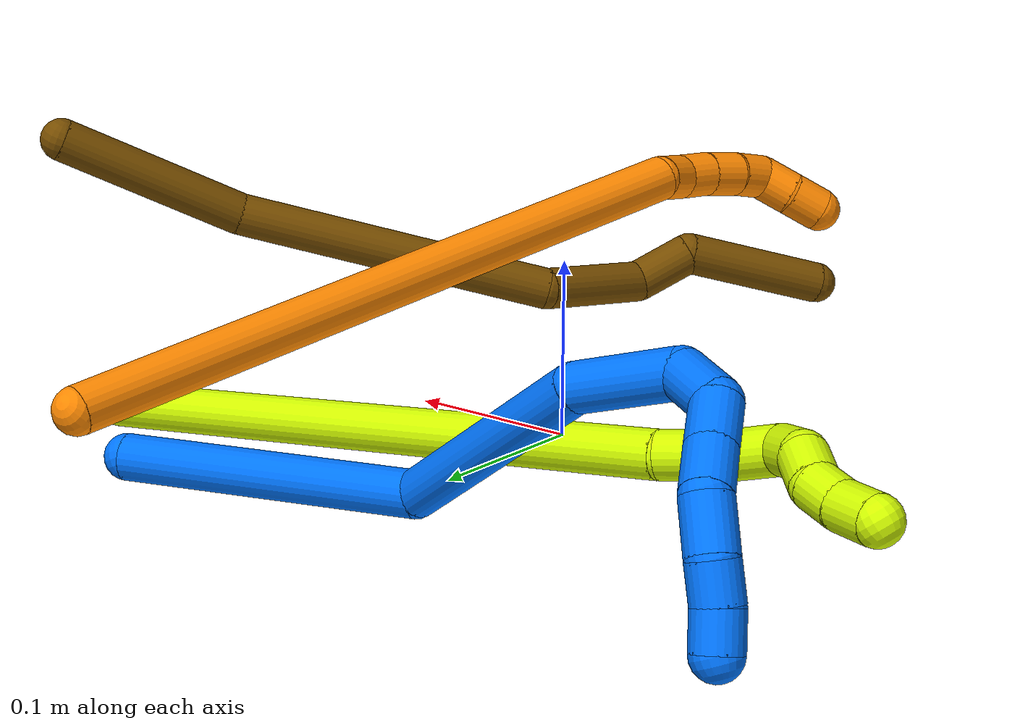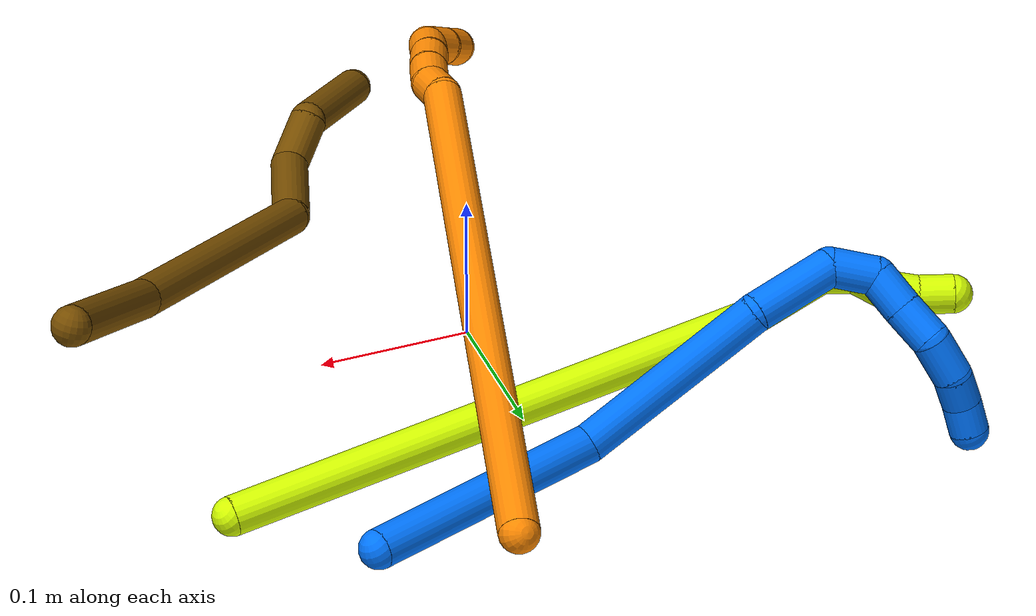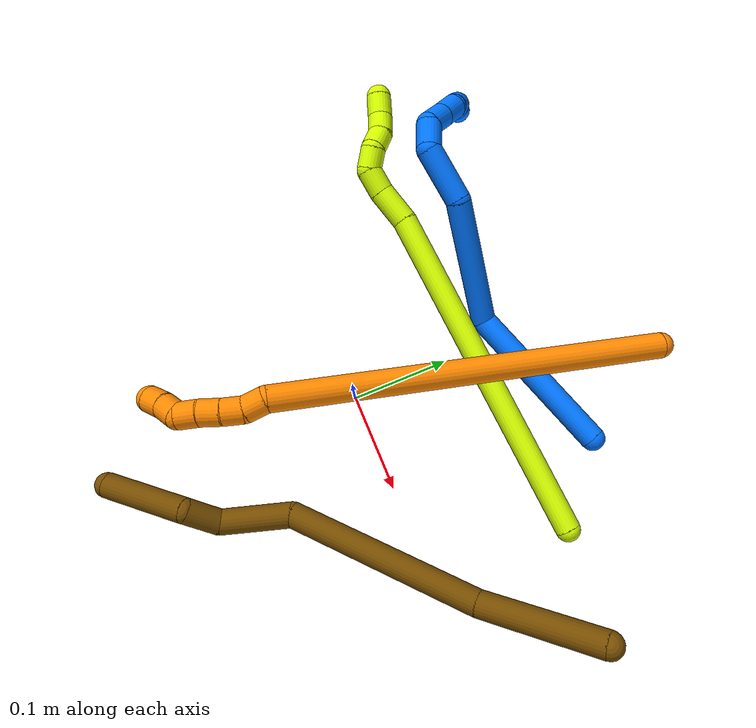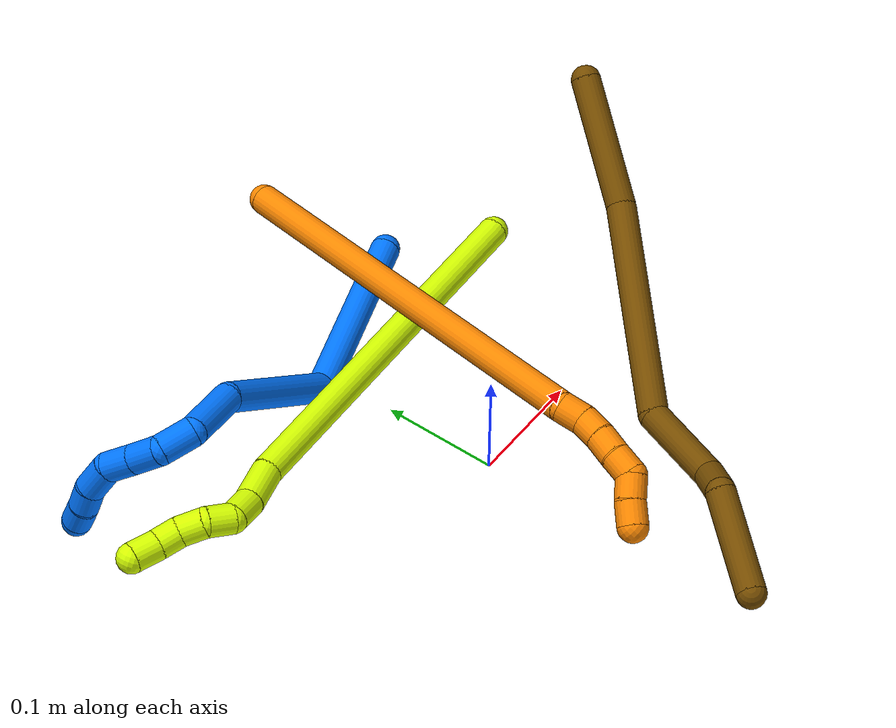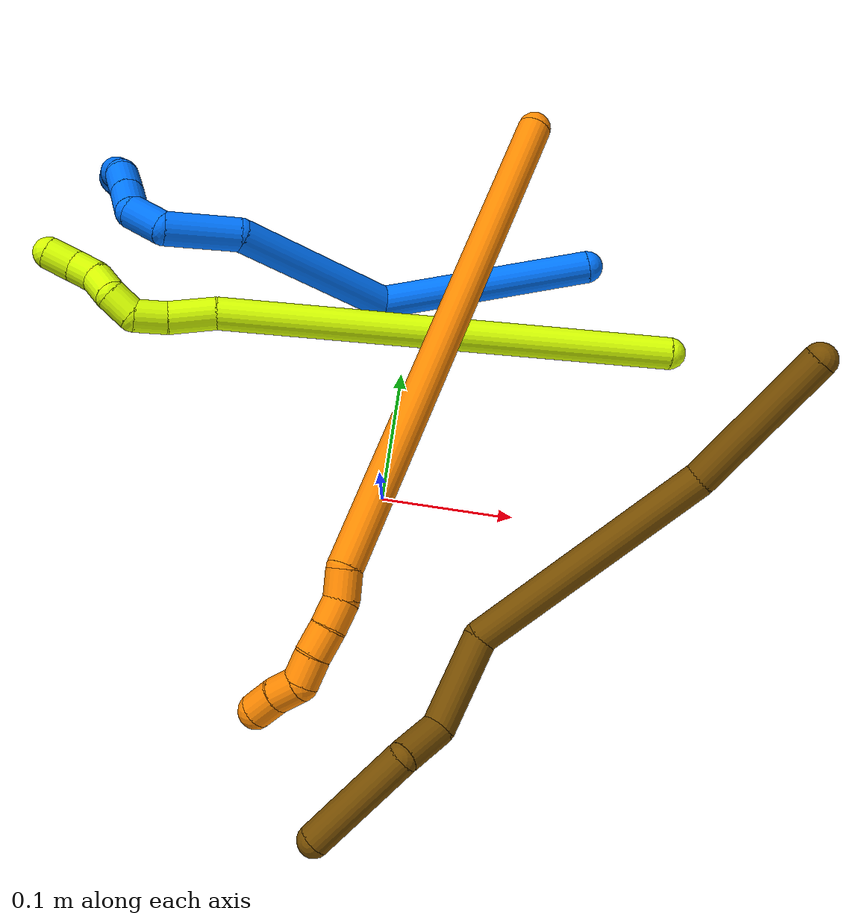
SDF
<sdf version="1.7">
 <world name="default">
  <model name="12">
   <static>0</static>
   <link name="12">
    <collision name="collision-cylinder-e_1_1_4">
     <pose>0.018146 -0.05366 0.007434 1.43313 0.323215 0.282114</pose>
     <geometry><cylinder><radius>0.0125</radius><length>0.114262</length></cylinder></geometry>
     <surface>
      <friction><ode><mu>1.16</mu><mu2>1.16</mu2><slip1>0</slip1><slip2>0</slip2></ode></friction>
      <contact><ode><kp>1e+06</kp><kd>1</kd><max_vel>0</max_vel><min_depth>0.001</min_depth></ode></contact>
     </surface>
    </collision>
    <visual name="visual-cylinder-e_1_1_4">
     <pose>0.018146 -0.05366 0.007434 1.43313 0.323215 0.282114</pose>
     <geometry><cylinder><radius>0.0125</radius><length>0.114262</length></cylinder></geometry>
     <material><ambient>0.466667 0.301961 0 1</ambient></material>
    </visual>
    <collision name="collision-cylinder-e_2_4_5">
     <pose>0.077459 -0.193334 0.007692 1.65404 0.445042 0.482293</pose>
     <geometry><cylinder><radius>0.0125</radius><length>0.191253</length></cylinder></geometry>
     <surface>
      <friction><ode><mu>1.16</mu><mu2>1.16</mu2><slip1>0</slip1><slip2>0</slip2></ode></friction>
      <contact><ode><kp>1e+06</kp><kd>1</kd><max_vel>0</max_vel><min_depth>0.001</min_depth></ode></contact>
     </surface>
    </collision>
    <visual name="visual-cylinder-e_2_4_5">
     <pose>0.077459 -0.193334 0.007692 1.65404 0.445042 0.482293</pose>
     <geometry><cylinder><radius>0.0125</radius><length>0.191253</length></cylinder></geometry>
     <material><ambient>0.466667 0.301961 0 1</ambient></material>
    </visual>
    <collision name="collision-cylinder-e_3_5_6">
     <pose>0.115274 -0.314002 -0.004889 1.72551 -0.095276 -0.111257</pose>
     <geometry><cylinder><radius>0.0125</radius><length>0.070467</length></cylinder></geometry>
     <surface>
      <friction><ode><mu>1.16</mu><mu2>1.16</mu2><slip1>0</slip1><slip2>0</slip2></ode></friction>
      <contact><ode><kp>1e+06</kp><kd>1</kd><max_vel>0</max_vel><min_depth>0.001</min_depth></ode></contact>
     </surface>
    </collision>
    <visual name="visual-cylinder-e_3_5_6">
     <pose>0.115274 -0.314002 -0.004889 1.72551 -0.095276 -0.111257</pose>
     <geometry><cylinder><radius>0.0125</radius><length>0.070467</length></cylinder></geometry>
     <material><ambient>0.466667 0.301961 0 1</ambient></material>
    </visual>
    <collision name="collision-cylinder-e_4_6_7">
     <pose>0.114796 -0.360993 -0.023382 2.38579 0.158481 0.394842</pose>
     <geometry><cylinder><radius>0.0125</radius><length>0.036427</length></cylinder></geometry>
     <surface>
      <friction><ode><mu>1.16</mu><mu2>1.16</mu2><slip1>0</slip1><slip2>0</slip2></ode></friction>
      <contact><ode><kp>1e+06</kp><kd>1</kd><max_vel>0</max_vel><min_depth>0.001</min_depth></ode></contact>
     </surface>
    </collision>
    <visual name="visual-cylinder-e_4_6_7">
     <pose>0.114796 -0.360993 -0.023382 2.38579 0.158481 0.394842</pose>
     <geometry><cylinder><radius>0.0125</radius><length>0.036427</length></cylinder></geometry>
     <material><ambient>0.466667 0.301961 0 1</ambient></material>
    </visual>
    <collision name="collision-cylinder-e_5_7_2">
     <pose>0.13154 -0.414809 -0.038707 1.62466 0.322232 0.339741</pose>
     <geometry><cylinder><radius>0.0125</radius><length>0.08759</length></cylinder></geometry>
     <surface>
      <friction><ode><mu>1.16</mu><mu2>1.16</mu2><slip1>0</slip1><slip2>0</slip2></ode></friction>
      <contact><ode><kp>1e+06</kp><kd>1</kd><max_vel>0</max_vel><min_depth>0.001</min_depth></ode></contact>
     </surface>
    </collision>
    <visual name="visual-cylinder-e_5_7_2">
     <pose>0.13154 -0.414809 -0.038707 1.62466 0.322232 0.339741</pose>
     <geometry><cylinder><radius>0.0125</radius><length>0.08759</length></cylinder></geometry>
     <material><ambient>0.466667 0.301961 0 1</ambient></material>
    </visual>
    <collision name="collision-sphere-2">
     <pose>0.145409 -0.456289 -0.040943 0 -0 0</pose>
     <geometry><sphere><radius>0.0125</radius></sphere></geometry>
     <surface>
      <friction><ode><mu>1.16</mu><mu2>1.16</mu2><slip1>0</slip1><slip2>0</slip2></ode></friction>
      <contact><ode><kp>1e+06</kp><kd>1</kd><max_vel>0</max_vel><min_depth>0.001</min_depth></ode></contact>
     </surface>
    </collision>
    <visual name="visual-sphere-2">
     <pose>0.145409 -0.456289 -0.040943 0 -0 0</pose>
     <geometry><sphere><radius>0.0125</radius></sphere></geometry>
     <material><ambient>0.466667 0.301961 0 1</ambient></material>
    </visual>
    <collision name="collision-sphere-7">
     <pose>0.117671 -0.373328 -0.03647 0 -0 0</pose>
     <geometry><sphere><radius>0.0125</radius></sphere></geometry>
     <surface>
      <friction><ode><mu>1.16</mu><mu2>1.16</mu2><slip1>0</slip1><slip2>0</slip2></ode></friction>
      <contact><ode><kp>1e+06</kp><kd>1</kd><max_vel>0</max_vel><min_depth>0.001</min_depth></ode></contact>
     </surface>
    </collision>
    <visual name="visual-sphere-7">
     <pose>0.117671 -0.373328 -0.03647 0 -0 0</pose>
     <geometry><sphere><radius>0.0125</radius></sphere></geometry>
     <material><ambient>0.466667 0.301961 0 1</ambient></material>
    </visual>
    <collision name="collision-sphere-6">
     <pose>0.111922 -0.348657 -0.010294 0 -0 0</pose>
     <geometry><sphere><radius>0.0125</radius></sphere></geometry>
     <surface>
      <friction><ode><mu>1.16</mu><mu2>1.16</mu2><slip1>0</slip1><slip2>0</slip2></ode></friction>
      <contact><ode><kp>1e+06</kp><kd>1</kd><max_vel>0</max_vel><min_depth>0.001</min_depth></ode></contact>
     </surface>
    </collision>
    <visual name="visual-sphere-6">
     <pose>0.111922 -0.348657 -0.010294 0 -0 0</pose>
     <geometry><sphere><radius>0.0125</radius></sphere></geometry>
     <material><ambient>0.466667 0.301961 0 1</ambient></material>
    </visual>
    <collision name="collision-sphere-5">
     <pose>0.118625 -0.279347 0.000516 0 -0 0</pose>
     <geometry><sphere><radius>0.0125</radius></sphere></geometry>
     <surface>
      <friction><ode><mu>1.16</mu><mu2>1.16</mu2><slip1>0</slip1><slip2>0</slip2></ode></friction>
      <contact><ode><kp>1e+06</kp><kd>1</kd><max_vel>0</max_vel><min_depth>0.001</min_depth></ode></contact>
     </surface>
    </collision>
    <visual name="visual-sphere-5">
     <pose>0.118625 -0.279347 0.000516 0 -0 0</pose>
     <geometry><sphere><radius>0.0125</radius></sphere></geometry>
     <material><ambient>0.466667 0.301961 0 1</ambient></material>
    </visual>
    <collision name="collision-sphere-1">
     <geometry><sphere><radius>0.0125</radius></sphere></geometry>
     <surface>
      <friction><ode><mu>1.16</mu><mu2>1.16</mu2><slip1>0</slip1><slip2>0</slip2></ode></friction>
      <contact><ode><kp>1e+06</kp><kd>1</kd><max_vel>0</max_vel><min_depth>0.001</min_depth></ode></contact>
     </surface>
    </collision>
    <visual name="visual-sphere-1">
     <geometry><sphere><radius>0.0125</radius></sphere></geometry>
     <material><ambient>0.466667 0.301961 0 1</ambient></material>
    </visual>
    <collision name="collision-sphere-4">
     <pose>0.036292 -0.107321 0.014868 0 -0 0</pose>
     <geometry><sphere><radius>0.0125</radius></sphere></geometry>
     <surface>
      <friction><ode><mu>1.16</mu><mu2>1.16</mu2><slip1>0</slip1><slip2>0</slip2></ode></friction>
      <contact><ode><kp>1e+06</kp><kd>1</kd><max_vel>0</max_vel><min_depth>0.001</min_depth></ode></contact>
     </surface>
    </collision>
    <visual name="visual-sphere-4">
     <pose>0.036292 -0.107321 0.014868 0 -0 0</pose>
     <geometry><sphere><radius>0.0125</radius></sphere></geometry>
     <material><ambient>0.466667 0.301961 0 1</ambient></material>
    </visual>
    <inertial>
     <pose>0.081428 -0.229434 -0.004532 0 -0 0</pose>
     <mass>0.5</mass>
     <inertia>
      <ixx>0.000989</ixx>
      <ixy>0</ixy>
      <ixz>0</ixz>
      <iyy>0.00036</iyy>
      <iyz>0</iyz>
      <izz>0.000428</izz>
     </inertia>
    </inertial>
   </link>
   <pose>0.284117 0.109589 0.14933 2.88403 0.249321 2.72767</pose>
  </model>
  <model name="14">
   <static>0</static>
   <link name="14">
    <collision name="collision-cylinder-e_1_1_4">
     <pose>-0.076094 0.00212 0.029818 -0.070991 -1.19647 0.048395</pose>
     <geometry><cylinder><radius>0.0125</radius><length>0.163511</length></cylinder></geometry>
     <surface>
      <friction><ode><mu>1.16</mu><mu2>1.16</mu2><slip1>0</slip1><slip2>0</slip2></ode></friction>
      <contact><ode><kp>1e+06</kp><kd>1</kd><max_vel>0</max_vel><min_depth>0.001</min_depth></ode></contact>
     </surface>
    </collision>
    <visual name="visual-cylinder-e_1_1_4">
     <pose>-0.076094 0.00212 0.029818 -0.070991 -1.19647 0.048395</pose>
     <geometry><cylinder><radius>0.0125</radius><length>0.163511</length></cylinder></geometry>
     <material><ambient>0 0.462745 1 1</ambient></material>
    </visual>
    <collision name="collision-cylinder-e_2_4_5">
     <pose>-0.209833 -0.024853 0.046806 1.98612 -1.06673 -1.47189</pose>
     <geometry><cylinder><radius>0.0125</radius><length>0.131666</length></cylinder></geometry>
     <surface>
      <friction><ode><mu>1.16</mu><mu2>1.16</mu2><slip1>0</slip1><slip2>0</slip2></ode></friction>
      <contact><ode><kp>1e+06</kp><kd>1</kd><max_vel>0</max_vel><min_depth>0.001</min_depth></ode></contact>
     </surface>
    </collision>
    <visual name="visual-cylinder-e_2_4_5">
     <pose>-0.209833 -0.024853 0.046806 1.98612 -1.06673 -1.47189</pose>
     <geometry><cylinder><radius>0.0125</radius><length>0.131666</length></cylinder></geometry>
     <material><ambient>0 0.462745 1 1</ambient></material>
    </visual>
    <collision name="collision-cylinder-e_3_5_6">
     <pose>-0.294646 -0.059208 0.037744 0.949408 -1.33696 -0.771113</pose>
     <geometry><cylinder><radius>0.0125</radius><length>0.055855</length></cylinder></geometry>
     <surface>
      <friction><ode><mu>1.16</mu><mu2>1.16</mu2><slip1>0</slip1><slip2>0</slip2></ode></friction>
      <contact><ode><kp>1e+06</kp><kd>1</kd><max_vel>0</max_vel><min_depth>0.001</min_depth></ode></contact>
     </surface>
    </collision>
    <visual name="visual-cylinder-e_3_5_6">
     <pose>-0.294646 -0.059208 0.037744 0.949408 -1.33696 -0.771113</pose>
     <geometry><cylinder><radius>0.0125</radius><length>0.055855</length></cylinder></geometry>
     <material><ambient>0 0.462745 1 1</ambient></material>
    </visual>
    <collision name="collision-cylinder-e_4_6_7">
     <pose>-0.330069 -0.072887 0.050318 0.762875 -0.595556 -0.244954</pose>
     <geometry><cylinder><radius>0.0125</radius><length>0.029433</length></cylinder></geometry>
     <surface>
      <friction><ode><mu>1.16</mu><mu2>1.16</mu2><slip1>0</slip1><slip2>0</slip2></ode></friction>
      <contact><ode><kp>1e+06</kp><kd>1</kd><max_vel>0</max_vel><min_depth>0.001</min_depth></ode></contact>
     </surface>
    </collision>
    <visual name="visual-cylinder-e_4_6_7">
     <pose>-0.330069 -0.072887 0.050318 0.762875 -0.595556 -0.244954</pose>
     <geometry><cylinder><radius>0.0125</radius><length>0.029433</length></cylinder></geometry>
     <material><ambient>0 0.462745 1 1</ambient></material>
    </visual>
    <collision name="collision-cylinder-e_5_7_8">
     <pose>-0.336598 -0.089755 0.068857 0.714946 0.133162 0.049802</pose>
     <geometry><cylinder><radius>0.0125</radius><length>0.026009</length></cylinder></geometry>
     <surface>
      <friction><ode><mu>1.16</mu><mu2>1.16</mu2><slip1>0</slip1><slip2>0</slip2></ode></friction>
      <contact><ode><kp>1e+06</kp><kd>1</kd><max_vel>0</max_vel><min_depth>0.001</min_depth></ode></contact>
     </surface>
    </collision>
    <visual name="visual-cylinder-e_5_7_8">
     <pose>-0.336598 -0.089755 0.068857 0.714946 0.133162 0.049802</pose>
     <geometry><cylinder><radius>0.0125</radius><length>0.026009</length></cylinder></geometry>
     <material><ambient>0 0.462745 1 1</ambient></material>
    </visual>
    <collision name="collision-cylinder-e_6_8_9">
     <pose>-0.333581 -0.106976 0.08795 0.752921 0.100284 0.039672</pose>
     <geometry><cylinder><radius>0.0125</radius><length>0.025784</length></cylinder></geometry>
     <surface>
      <friction><ode><mu>1.16</mu><mu2>1.16</mu2><slip1>0</slip1><slip2>0</slip2></ode></friction>
      <contact><ode><kp>1e+06</kp><kd>1</kd><max_vel>0</max_vel><min_depth>0.001</min_depth></ode></contact>
     </surface>
    </collision>
    <visual name="visual-cylinder-e_6_8_9">
     <pose>-0.333581 -0.106976 0.08795 0.752921 0.100284 0.039672</pose>
     <geometry><cylinder><radius>0.0125</radius><length>0.025784</length></cylinder></geometry>
     <material><ambient>0 0.462745 1 1</ambient></material>
    </visual>
    <collision name="collision-cylinder-e_7_9_10">
     <pose>-0.331011 -0.119514 0.110485 0.278439 0.093057 0.013049</pose>
     <geometry><cylinder><radius>0.0125</radius><length>0.027523</length></cylinder></geometry>
     <surface>
      <friction><ode><mu>1.16</mu><mu2>1.16</mu2><slip1>0</slip1><slip2>0</slip2></ode></friction>
      <contact><ode><kp>1e+06</kp><kd>1</kd><max_vel>0</max_vel><min_depth>0.001</min_depth></ode></contact>
     </surface>
    </collision>
    <visual name="visual-cylinder-e_7_9_10">
     <pose>-0.331011 -0.119514 0.110485 0.278439 0.093057 0.013049</pose>
     <geometry><cylinder><radius>0.0125</radius><length>0.027523</length></cylinder></geometry>
     <material><ambient>0 0.462745 1 1</ambient></material>
    </visual>
    <collision name="collision-cylinder-e_8_10_11">
     <pose>-0.328193 -0.123411 0.13364 0.013208 0.152964 0.001012</pose>
     <geometry><cylinder><radius>0.0125</radius><length>0.020201</length></cylinder></geometry>
     <surface>
      <friction><ode><mu>1.16</mu><mu2>1.16</mu2><slip1>0</slip1><slip2>0</slip2></ode></friction>
      <contact><ode><kp>1e+06</kp><kd>1</kd><max_vel>0</max_vel><min_depth>0.001</min_depth></ode></contact>
     </surface>
    </collision>
    <visual name="visual-cylinder-e_8_10_11">
     <pose>-0.328193 -0.123411 0.13364 0.013208 0.152964 0.001012</pose>
     <geometry><cylinder><radius>0.0125</radius><length>0.020201</length></cylinder></geometry>
     <material><ambient>0 0.462745 1 1</ambient></material>
    </visual>
    <collision name="collision-cylinder-e_9_11_2">
     <pose>-0.323897 -0.124457 0.1532 0.095075 0.279129 0.013366</pose>
     <geometry><cylinder><radius>0.0125</radius><length>0.020019</length></cylinder></geometry>
     <surface>
      <friction><ode><mu>1.16</mu><mu2>1.16</mu2><slip1>0</slip1><slip2>0</slip2></ode></friction>
      <contact><ode><kp>1e+06</kp><kd>1</kd><max_vel>0</max_vel><min_depth>0.001</min_depth></ode></contact>
     </surface>
    </collision>
    <visual name="visual-cylinder-e_9_11_2">
     <pose>-0.323897 -0.124457 0.1532 0.095075 0.279129 0.013366</pose>
     <geometry><cylinder><radius>0.0125</radius><length>0.020019</length></cylinder></geometry>
     <material><ambient>0 0.462745 1 1</ambient></material>
    </visual>
    <collision name="collision-sphere-2">
     <pose>-0.321139 -0.12537 0.162779 0 -0 0</pose>
     <geometry><sphere><radius>0.0125</radius></sphere></geometry>
     <surface>
      <friction><ode><mu>1.16</mu><mu2>1.16</mu2><slip1>0</slip1><slip2>0</slip2></ode></friction>
      <contact><ode><kp>1e+06</kp><kd>1</kd><max_vel>0</max_vel><min_depth>0.001</min_depth></ode></contact>
     </surface>
    </collision>
    <visual name="visual-sphere-2">
     <pose>-0.321139 -0.12537 0.162779 0 -0 0</pose>
     <geometry><sphere><radius>0.0125</radius></sphere></geometry>
     <material><ambient>0 0.462745 1 1</ambient></material>
    </visual>
    <collision name="collision-sphere-11">
     <pose>-0.326654 -0.123543 0.143622 0 -0 0</pose>
     <geometry><sphere><radius>0.0125</radius></sphere></geometry>
     <surface>
      <friction><ode><mu>1.16</mu><mu2>1.16</mu2><slip1>0</slip1><slip2>0</slip2></ode></friction>
      <contact><ode><kp>1e+06</kp><kd>1</kd><max_vel>0</max_vel><min_depth>0.001</min_depth></ode></contact>
     </surface>
    </collision>
    <visual name="visual-sphere-11">
     <pose>-0.326654 -0.123543 0.143622 0 -0 0</pose>
     <geometry><sphere><radius>0.0125</radius></sphere></geometry>
     <material><ambient>0 0.462745 1 1</ambient></material>
    </visual>
    <collision name="collision-sphere-10">
     <pose>-0.329732 -0.12328 0.123659 0 -0 0</pose>
     <geometry><sphere><radius>0.0125</radius></sphere></geometry>
     <surface>
      <friction><ode><mu>1.16</mu><mu2>1.16</mu2><slip1>0</slip1><slip2>0</slip2></ode></friction>
      <contact><ode><kp>1e+06</kp><kd>1</kd><max_vel>0</max_vel><min_depth>0.001</min_depth></ode></contact>
     </surface>
    </collision>
    <visual name="visual-sphere-10">
     <pose>-0.329732 -0.12328 0.123659 0 -0 0</pose>
     <geometry><sphere><radius>0.0125</radius></sphere></geometry>
     <material><ambient>0 0.462745 1 1</ambient></material>
    </visual>
    <collision name="collision-sphere-9">
     <pose>-0.33229 -0.115748 0.09731 0 -0 0</pose>
     <geometry><sphere><radius>0.0125</radius></sphere></geometry>
     <surface>
      <friction><ode><mu>1.16</mu><mu2>1.16</mu2><slip1>0</slip1><slip2>0</slip2></ode></friction>
      <contact><ode><kp>1e+06</kp><kd>1</kd><max_vel>0</max_vel><min_depth>0.001</min_depth></ode></contact>
     </surface>
    </collision>
    <visual name="visual-sphere-9">
     <pose>-0.33229 -0.115748 0.09731 0 -0 0</pose>
     <geometry><sphere><radius>0.0125</radius></sphere></geometry>
     <material><ambient>0 0.462745 1 1</ambient></material>
    </visual>
    <collision name="collision-sphere-4">
     <pose>-0.152188 0.004241 0.059636 0 -0 0</pose>
     <geometry><sphere><radius>0.0125</radius></sphere></geometry>
     <surface>
      <friction><ode><mu>1.16</mu><mu2>1.16</mu2><slip1>0</slip1><slip2>0</slip2></ode></friction>
      <contact><ode><kp>1e+06</kp><kd>1</kd><max_vel>0</max_vel><min_depth>0.001</min_depth></ode></contact>
     </surface>
    </collision>
    <visual name="visual-sphere-4">
     <pose>-0.152188 0.004241 0.059636 0 -0 0</pose>
     <geometry><sphere><radius>0.0125</radius></sphere></geometry>
     <material><ambient>0 0.462745 1 1</ambient></material>
    </visual>
    <collision name="collision-sphere-1">
     <geometry><sphere><radius>0.0125</radius></sphere></geometry>
     <surface>
      <friction><ode><mu>1.16</mu><mu2>1.16</mu2><slip1>0</slip1><slip2>0</slip2></ode></friction>
      <contact><ode><kp>1e+06</kp><kd>1</kd><max_vel>0</max_vel><min_depth>0.001</min_depth></ode></contact>
     </surface>
    </collision>
    <visual name="visual-sphere-1">
     <geometry><sphere><radius>0.0125</radius></sphere></geometry>
     <material><ambient>0 0.462745 1 1</ambient></material>
    </visual>
    <collision name="collision-sphere-8">
     <pose>-0.334871 -0.098205 0.07859 0 -0 0</pose>
     <geometry><sphere><radius>0.0125</radius></sphere></geometry>
     <surface>
      <friction><ode><mu>1.16</mu><mu2>1.16</mu2><slip1>0</slip1><slip2>0</slip2></ode></friction>
      <contact><ode><kp>1e+06</kp><kd>1</kd><max_vel>0</max_vel><min_depth>0.001</min_depth></ode></contact>
     </surface>
    </collision>
    <visual name="visual-sphere-8">
     <pose>-0.334871 -0.098205 0.07859 0 -0 0</pose>
     <geometry><sphere><radius>0.0125</radius></sphere></geometry>
     <material><ambient>0 0.462745 1 1</ambient></material>
    </visual>
    <collision name="collision-sphere-5">
     <pose>-0.267479 -0.053946 0.033977 0 -0 0</pose>
     <geometry><sphere><radius>0.0125</radius></sphere></geometry>
     <surface>
      <friction><ode><mu>1.16</mu><mu2>1.16</mu2><slip1>0</slip1><slip2>0</slip2></ode></friction>
      <contact><ode><kp>1e+06</kp><kd>1</kd><max_vel>0</max_vel><min_depth>0.001</min_depth></ode></contact>
     </surface>
    </collision>
    <visual name="visual-sphere-5">
     <pose>-0.267479 -0.053946 0.033977 0 -0 0</pose>
     <geometry><sphere><radius>0.0125</radius></sphere></geometry>
     <material><ambient>0 0.462745 1 1</ambient></material>
    </visual>
    <collision name="collision-sphere-6">
     <pose>-0.321814 -0.064469 0.041511 0 -0 0</pose>
     <geometry><sphere><radius>0.0125</radius></sphere></geometry>
     <surface>
      <friction><ode><mu>1.16</mu><mu2>1.16</mu2><slip1>0</slip1><slip2>0</slip2></ode></friction>
      <contact><ode><kp>1e+06</kp><kd>1</kd><max_vel>0</max_vel><min_depth>0.001</min_depth></ode></contact>
     </surface>
    </collision>
    <visual name="visual-sphere-6">
     <pose>-0.321814 -0.064469 0.041511 0 -0 0</pose>
     <geometry><sphere><radius>0.0125</radius></sphere></geometry>
     <material><ambient>0 0.462745 1 1</ambient></material>
    </visual>
    <collision name="collision-sphere-7">
     <pose>-0.338324 -0.081305 0.059124 0 -0 0</pose>
     <geometry><sphere><radius>0.0125</radius></sphere></geometry>
     <surface>
      <friction><ode><mu>1.16</mu><mu2>1.16</mu2><slip1>0</slip1><slip2>0</slip2></ode></friction>
      <contact><ode><kp>1e+06</kp><kd>1</kd><max_vel>0</max_vel><min_depth>0.001</min_depth></ode></contact>
     </surface>
    </collision>
    <visual name="visual-sphere-7">
     <pose>-0.338324 -0.081305 0.059124 0 -0 0</pose>
     <geometry><sphere><radius>0.0125</radius></sphere></geometry>
     <material><ambient>0 0.462745 1 1</ambient></material>
    </visual>
    <inertial>
     <pose>-0.211645 -0.043489 0.054987 0 -0 0</pose>
     <mass>0.5</mass>
     <inertia>
      <ixx>4.5e-05</ixx>
      <ixy>0</ixy>
      <ixz>0</ixz>
      <iyy>0.000446</iyy>
      <iyz>0</iyz>
      <izz>0.000631</izz>
     </inertia>
    </inertial>
   </link>
   <pose>0.132054 0.205489 0.0125 -2.87708 0.366497 0.395036</pose>
  </model>
  <model name="15">
   <static>0</static>
   <link name="15">
    <collision name="collision-cylinder-e_1_1_4">
     <pose>-0.143186 -0.040138 -0.092225 2.7311 -0.958428 -2.37948</pose>
     <geometry><cylinder><radius>0.0125</radius><length>0.349965</length></cylinder></geometry>
     <surface>
      <friction><ode><mu>1.16</mu><mu2>1.16</mu2><slip1>0</slip1><slip2>0</slip2></ode></friction>
      <contact><ode><kp>1e+06</kp><kd>1</kd><max_vel>0</max_vel><min_depth>0.001</min_depth></ode></contact>
     </surface>
    </collision>
    <visual name="visual-cylinder-e_1_1_4">
     <pose>-0.143186 -0.040138 -0.092225 2.7311 -0.958428 -2.37948</pose>
     <geometry><cylinder><radius>0.0125</radius><length>0.349965</length></cylinder></geometry>
     <material><ambient>0.835294 1 0 1</ambient></material>
    </visual>
    <collision name="collision-cylinder-e_2_4_5">
     <pose>-0.300523 -0.088097 -0.193601 2.43441 -0.865913 -1.79385</pose>
     <geometry><cylinder><radius>0.0125</radius><length>0.037156</length></cylinder></geometry>
     <surface>
      <friction><ode><mu>1.16</mu><mu2>1.16</mu2><slip1>0</slip1><slip2>0</slip2></ode></friction>
      <contact><ode><kp>1e+06</kp><kd>1</kd><max_vel>0</max_vel><min_depth>0.001</min_depth></ode></contact>
     </surface>
    </collision>
    <visual name="visual-cylinder-e_2_4_5">
     <pose>-0.300523 -0.088097 -0.193601 2.43441 -0.865913 -1.79385</pose>
     <geometry><cylinder><radius>0.0125</radius><length>0.037156</length></cylinder></geometry>
     <material><ambient>0.835294 1 0 1</ambient></material>
    </visual>
    <collision name="collision-cylinder-e_3_5_6">
     <pose>-0.3258 -0.099914 -0.207562 2.44819 -1.05876 -2.0352</pose>
     <geometry><cylinder><radius>0.0125</radius><length>0.025528</length></cylinder></geometry>
     <surface>
      <friction><ode><mu>1.16</mu><mu2>1.16</mu2><slip1>0</slip1><slip2>0</slip2></ode></friction>
      <contact><ode><kp>1e+06</kp><kd>1</kd><max_vel>0</max_vel><min_depth>0.001</min_depth></ode></contact>
     </surface>
    </collision>
    <visual name="visual-cylinder-e_3_5_6">
     <pose>-0.3258 -0.099914 -0.207562 2.44819 -1.05876 -2.0352</pose>
     <geometry><cylinder><radius>0.0125</radius><length>0.025528</length></cylinder></geometry>
     <material><ambient>0.835294 1 0 1</ambient></material>
    </visual>
    <collision name="collision-cylinder-e_4_6_7">
     <pose>-0.346472 -0.099459 -0.215978 -2.25162 -1.03019 1.7414</pose>
     <geometry><cylinder><radius>0.0125</radius><length>0.022265</length></cylinder></geometry>
     <surface>
      <friction><ode><mu>1.16</mu><mu2>1.16</mu2><slip1>0</slip1><slip2>0</slip2></ode></friction>
      <contact><ode><kp>1e+06</kp><kd>1</kd><max_vel>0</max_vel><min_depth>0.001</min_depth></ode></contact>
     </surface>
    </collision>
    <visual name="visual-cylinder-e_4_6_7">
     <pose>-0.346472 -0.099459 -0.215978 -2.25162 -1.03019 1.7414</pose>
     <geometry><cylinder><radius>0.0125</radius><length>0.022265</length></cylinder></geometry>
     <material><ambient>0.835294 1 0 1</ambient></material>
    </visual>
    <collision name="collision-cylinder-e_5_7_8">
     <pose>-0.36128 -0.088496 -0.22661 -2.39419 -0.502354 1.15888</pose>
     <geometry><cylinder><radius>0.0125</radius><length>0.021859</length></cylinder></geometry>
     <surface>
      <friction><ode><mu>1.16</mu><mu2>1.16</mu2><slip1>0</slip1><slip2>0</slip2></ode></friction>
      <contact><ode><kp>1e+06</kp><kd>1</kd><max_vel>0</max_vel><min_depth>0.001</min_depth></ode></contact>
     </surface>
    </collision>
    <visual name="visual-cylinder-e_5_7_8">
     <pose>-0.36128 -0.088496 -0.22661 -2.39419 -0.502354 1.15888</pose>
     <geometry><cylinder><radius>0.0125</radius><length>0.021859</length></cylinder></geometry>
     <material><ambient>0.835294 1 0 1</ambient></material>
    </visual>
    <collision name="collision-cylinder-e_6_8_9">
     <pose>-0.373502 -0.079284 -0.240405 -2.762 -0.762397 2.24768</pose>
     <geometry><cylinder><radius>0.0125</radius><length>0.020155</length></cylinder></geometry>
     <surface>
      <friction><ode><mu>1.16</mu><mu2>1.16</mu2><slip1>0</slip1><slip2>0</slip2></ode></friction>
      <contact><ode><kp>1e+06</kp><kd>1</kd><max_vel>0</max_vel><min_depth>0.001</min_depth></ode></contact>
     </surface>
    </collision>
    <visual name="visual-cylinder-e_6_8_9">
     <pose>-0.373502 -0.079284 -0.240405 -2.762 -0.762397 2.24768</pose>
     <geometry><cylinder><radius>0.0125</radius><length>0.020155</length></cylinder></geometry>
     <material><ambient>0.835294 1 0 1</ambient></material>
    </visual>
    <collision name="collision-cylinder-e_7_9_2">
     <pose>-0.389807 -0.074355 -0.253561 -2.80591 -0.94419 2.5008</pose>
     <geometry><cylinder><radius>0.0125</radius><length>0.023073</length></cylinder></geometry>
     <surface>
      <friction><ode><mu>1.16</mu><mu2>1.16</mu2><slip1>0</slip1><slip2>0</slip2></ode></friction>
      <contact><ode><kp>1e+06</kp><kd>1</kd><max_vel>0</max_vel><min_depth>0.001</min_depth></ode></contact>
     </surface>
    </collision>
    <visual name="visual-cylinder-e_7_9_2">
     <pose>-0.389807 -0.074355 -0.253561 -2.80591 -0.94419 2.5008</pose>
     <geometry><cylinder><radius>0.0125</radius><length>0.023073</length></cylinder></geometry>
     <material><ambient>0.835294 1 0 1</ambient></material>
    </visual>
    <collision name="collision-sphere-2">
     <pose>-0.399152 -0.072127 -0.259949 0 -0 0</pose>
     <geometry><sphere><radius>0.0125</radius></sphere></geometry>
     <surface>
      <friction><ode><mu>1.16</mu><mu2>1.16</mu2><slip1>0</slip1><slip2>0</slip2></ode></friction>
      <contact><ode><kp>1e+06</kp><kd>1</kd><max_vel>0</max_vel><min_depth>0.001</min_depth></ode></contact>
     </surface>
    </collision>
    <visual name="visual-sphere-2">
     <pose>-0.399152 -0.072127 -0.259949 0 -0 0</pose>
     <geometry><sphere><radius>0.0125</radius></sphere></geometry>
     <material><ambient>0.835294 1 0 1</ambient></material>
    </visual>
    <collision name="collision-sphere-9">
     <pose>-0.380462 -0.076584 -0.247174 0 -0 0</pose>
     <geometry><sphere><radius>0.0125</radius></sphere></geometry>
     <surface>
      <friction><ode><mu>1.16</mu><mu2>1.16</mu2><slip1>0</slip1><slip2>0</slip2></ode></friction>
      <contact><ode><kp>1e+06</kp><kd>1</kd><max_vel>0</max_vel><min_depth>0.001</min_depth></ode></contact>
     </surface>
    </collision>
    <visual name="visual-sphere-9">
     <pose>-0.380462 -0.076584 -0.247174 0 -0 0</pose>
     <geometry><sphere><radius>0.0125</radius></sphere></geometry>
     <material><ambient>0.835294 1 0 1</ambient></material>
    </visual>
    <collision name="collision-sphere-4">
     <pose>-0.286372 -0.080276 -0.184451 0 -0 0</pose>
     <geometry><sphere><radius>0.0125</radius></sphere></geometry>
     <surface>
      <friction><ode><mu>1.16</mu><mu2>1.16</mu2><slip1>0</slip1><slip2>0</slip2></ode></friction>
      <contact><ode><kp>1e+06</kp><kd>1</kd><max_vel>0</max_vel><min_depth>0.001</min_depth></ode></contact>
     </surface>
    </collision>
    <visual name="visual-sphere-4">
     <pose>-0.286372 -0.080276 -0.184451 0 -0 0</pose>
     <geometry><sphere><radius>0.0125</radius></sphere></geometry>
     <material><ambient>0.835294 1 0 1</ambient></material>
    </visual>
    <collision name="collision-sphere-1">
     <geometry><sphere><radius>0.0125</radius></sphere></geometry>
     <surface>
      <friction><ode><mu>1.16</mu><mu2>1.16</mu2><slip1>0</slip1><slip2>0</slip2></ode></friction>
      <contact><ode><kp>1e+06</kp><kd>1</kd><max_vel>0</max_vel><min_depth>0.001</min_depth></ode></contact>
     </surface>
    </collision>
    <visual name="visual-sphere-1">
     <geometry><sphere><radius>0.0125</radius></sphere></geometry>
     <material><ambient>0.835294 1 0 1</ambient></material>
    </visual>
    <collision name="collision-sphere-8">
     <pose>-0.366542 -0.081984 -0.233636 0 -0 0</pose>
     <geometry><sphere><radius>0.0125</radius></sphere></geometry>
     <surface>
      <friction><ode><mu>1.16</mu><mu2>1.16</mu2><slip1>0</slip1><slip2>0</slip2></ode></friction>
      <contact><ode><kp>1e+06</kp><kd>1</kd><max_vel>0</max_vel><min_depth>0.001</min_depth></ode></contact>
     </surface>
    </collision>
    <visual name="visual-sphere-8">
     <pose>-0.366542 -0.081984 -0.233636 0 -0 0</pose>
     <geometry><sphere><radius>0.0125</radius></sphere></geometry>
     <material><ambient>0.835294 1 0 1</ambient></material>
    </visual>
    <collision name="collision-sphere-5">
     <pose>-0.314673 -0.095917 -0.202752 0 -0 0</pose>
     <geometry><sphere><radius>0.0125</radius></sphere></geometry>
     <surface>
      <friction><ode><mu>1.16</mu><mu2>1.16</mu2><slip1>0</slip1><slip2>0</slip2></ode></friction>
      <contact><ode><kp>1e+06</kp><kd>1</kd><max_vel>0</max_vel><min_depth>0.001</min_depth></ode></contact>
     </surface>
    </collision>
    <visual name="visual-sphere-5">
     <pose>-0.314673 -0.095917 -0.202752 0 -0 0</pose>
     <geometry><sphere><radius>0.0125</radius></sphere></geometry>
     <material><ambient>0.835294 1 0 1</ambient></material>
    </visual>
    <collision name="collision-sphere-6">
     <pose>-0.336927 -0.103911 -0.212371 0 -0 0</pose>
     <geometry><sphere><radius>0.0125</radius></sphere></geometry>
     <surface>
      <friction><ode><mu>1.16</mu><mu2>1.16</mu2><slip1>0</slip1><slip2>0</slip2></ode></friction>
      <contact><ode><kp>1e+06</kp><kd>1</kd><max_vel>0</max_vel><min_depth>0.001</min_depth></ode></contact>
     </surface>
    </collision>
    <visual name="visual-sphere-6">
     <pose>-0.336927 -0.103911 -0.212371 0 -0 0</pose>
     <geometry><sphere><radius>0.0125</radius></sphere></geometry>
     <material><ambient>0.835294 1 0 1</ambient></material>
    </visual>
    <collision name="collision-sphere-7">
     <pose>-0.356017 -0.095007 -0.219584 0 -0 0</pose>
     <geometry><sphere><radius>0.0125</radius></sphere></geometry>
     <surface>
      <friction><ode><mu>1.16</mu><mu2>1.16</mu2><slip1>0</slip1><slip2>0</slip2></ode></friction>
      <contact><ode><kp>1e+06</kp><kd>1</kd><max_vel>0</max_vel><min_depth>0.001</min_depth></ode></contact>
     </surface>
    </collision>
    <visual name="visual-sphere-7">
     <pose>-0.356017 -0.095007 -0.219584 0 -0 0</pose>
     <geometry><sphere><radius>0.0125</radius></sphere></geometry>
     <material><ambient>0.835294 1 0 1</ambient></material>
    </visual>
    <inertial>
     <pose>-0.203453 -0.054666 -0.130451 0 -0 0</pose>
     <mass>0.5</mass>
     <inertia>
      <ixx>-0.002948</ixx>
      <ixy>0</ixy>
      <ixz>0</ixz>
      <iyy>0.001767</iyy>
      <iyz>0</iyz>
      <izz>0.003748</izz>
     </inertia>
    </inertial>
   </link>
   <pose>0.203992 0.144258 0.012528 -0.20248 0.631203 -0.252578</pose>
  </model>
  <model name="19">
   <static>0</static>
   <link name="19">
    <collision name="collision-cylinder-e_1_1_4">
     <pose>-0.035221 -0.136397 0.126499 0.82303 -0.187116 -0.081857</pose>
     <geometry><cylinder><radius>0.0125</radius><length>0.378663</length></cylinder></geometry>
     <surface>
      <friction><ode><mu>1.16</mu><mu2>1.16</mu2><slip1>0</slip1><slip2>0</slip2></ode></friction>
      <contact><ode><kp>1e+06</kp><kd>1</kd><max_vel>0</max_vel><min_depth>0.001</min_depth></ode></contact>
     </surface>
    </collision>
    <visual name="visual-cylinder-e_1_1_4">
     <pose>-0.035221 -0.136397 0.126499 0.82303 -0.187116 -0.081857</pose>
     <geometry><cylinder><radius>0.0125</radius><length>0.378663</length></cylinder></geometry>
     <material><ambient>0.996078 0.537255 0 1</ambient></material>
    </visual>
    <collision name="collision-cylinder-e_2_4_5">
     <pose>-0.072812 -0.276711 0.26229 0.398995 -0.230876 -0.04688</pose>
     <geometry><cylinder><radius>0.0125</radius><length>0.020719</length></cylinder></geometry>
     <surface>
      <friction><ode><mu>1.16</mu><mu2>1.16</mu2><slip1>0</slip1><slip2>0</slip2></ode></friction>
      <contact><ode><kp>1e+06</kp><kd>1</kd><max_vel>0</max_vel><min_depth>0.001</min_depth></ode></contact>
     </surface>
    </collision>
    <visual name="visual-cylinder-e_2_4_5">
     <pose>-0.072812 -0.276711 0.26229 0.398995 -0.230876 -0.04688</pose>
     <geometry><cylinder><radius>0.0125</radius><length>0.020719</length></cylinder></geometry>
     <material><ambient>0.996078 0.537255 0 1</ambient></material>
    </visual>
    <collision name="collision-cylinder-e_3_5_6">
     <pose>-0.075409 -0.287025 0.279316 0.691068 -0.022568 -0.008124</pose>
     <geometry><cylinder><radius>0.0125</radius><length>0.020077</length></cylinder></geometry>
     <surface>
      <friction><ode><mu>1.16</mu><mu2>1.16</mu2><slip1>0</slip1><slip2>0</slip2></ode></friction>
      <contact><ode><kp>1e+06</kp><kd>1</kd><max_vel>0</max_vel><min_depth>0.001</min_depth></ode></contact>
     </surface>
    </collision>
    <visual name="visual-cylinder-e_3_5_6">
     <pose>-0.075409 -0.287025 0.279316 0.691068 -0.022568 -0.008124</pose>
     <geometry><cylinder><radius>0.0125</radius><length>0.020077</length></cylinder></geometry>
     <material><ambient>0.996078 0.537255 0 1</ambient></material>
    </visual>
    <collision name="collision-cylinder-e_4_6_7">
     <pose>-0.074777 -0.299747 0.29498 0.673194 0.084423 0.029556</pose>
     <geometry><cylinder><radius>0.0125</radius><length>0.020362</length></cylinder></geometry>
     <surface>
      <friction><ode><mu>1.16</mu><mu2>1.16</mu2><slip1>0</slip1><slip2>0</slip2></ode></friction>
      <contact><ode><kp>1e+06</kp><kd>1</kd><max_vel>0</max_vel><min_depth>0.001</min_depth></ode></contact>
     </surface>
    </collision>
    <visual name="visual-cylinder-e_4_6_7">
     <pose>-0.074777 -0.299747 0.29498 0.673194 0.084423 0.029556</pose>
     <geometry><cylinder><radius>0.0125</radius><length>0.020362</length></cylinder></geometry>
     <material><ambient>0.996078 0.537255 0 1</ambient></material>
    </visual>
    <collision name="collision-cylinder-e_5_7_8">
     <pose>-0.073229 -0.311286 0.311489 0.546216 0.068629 0.01923</pose>
     <geometry><cylinder><radius>0.0125</radius><length>0.020124</length></cylinder></geometry>
     <surface>
      <friction><ode><mu>1.16</mu><mu2>1.16</mu2><slip1>0</slip1><slip2>0</slip2></ode></friction>
      <contact><ode><kp>1e+06</kp><kd>1</kd><max_vel>0</max_vel><min_depth>0.001</min_depth></ode></contact>
     </surface>
    </collision>
    <visual name="visual-cylinder-e_5_7_8">
     <pose>-0.073229 -0.311286 0.311489 0.546216 0.068629 0.01923</pose>
     <geometry><cylinder><radius>0.0125</radius><length>0.020124</length></cylinder></geometry>
     <material><ambient>0.996078 0.537255 0 1</ambient></material>
    </visual>
    <collision name="collision-cylinder-e_6_8_9">
     <pose>-0.065331 -0.320633 0.325668 0.635571 0.802797 0.277434</pose>
     <geometry><cylinder><radius>0.0125</radius><length>0.02004</length></cylinder></geometry>
     <surface>
      <friction><ode><mu>1.16</mu><mu2>1.16</mu2><slip1>0</slip1><slip2>0</slip2></ode></friction>
      <contact><ode><kp>1e+06</kp><kd>1</kd><max_vel>0</max_vel><min_depth>0.001</min_depth></ode></contact>
     </surface>
    </collision>
    <visual name="visual-cylinder-e_6_8_9">
     <pose>-0.065331 -0.320633 0.325668 0.635571 0.802797 0.277434</pose>
     <geometry><cylinder><radius>0.0125</radius><length>0.02004</length></cylinder></geometry>
     <material><ambient>0.996078 0.537255 0 1</ambient></material>
    </visual>
    <collision name="collision-cylinder-e_7_9_2">
     <pose>-0.05193 -0.328706 0.338071 0.525219 0.667384 0.185838</pose>
     <geometry><cylinder><radius>0.0125</radius><length>0.020016</length></cylinder></geometry>
     <surface>
      <friction><ode><mu>1.16</mu><mu2>1.16</mu2><slip1>0</slip1><slip2>0</slip2></ode></friction>
      <contact><ode><kp>1e+06</kp><kd>1</kd><max_vel>0</max_vel><min_depth>0.001</min_depth></ode></contact>
     </surface>
    </collision>
    <visual name="visual-cylinder-e_7_9_2">
     <pose>-0.05193 -0.328706 0.338071 0.525219 0.667384 0.185838</pose>
     <geometry><cylinder><radius>0.0125</radius><length>0.020016</length></cylinder></geometry>
     <material><ambient>0.996078 0.537255 0 1</ambient></material>
    </visual>
    <collision name="collision-sphere-2">
     <pose>-0.045735 -0.332648 0.344872 0 -0 0</pose>
     <geometry><sphere><radius>0.0125</radius></sphere></geometry>
     <surface>
      <friction><ode><mu>1.16</mu><mu2>1.16</mu2><slip1>0</slip1><slip2>0</slip2></ode></friction>
      <contact><ode><kp>1e+06</kp><kd>1</kd><max_vel>0</max_vel><min_depth>0.001</min_depth></ode></contact>
     </surface>
    </collision>
    <visual name="visual-sphere-2">
     <pose>-0.045735 -0.332648 0.344872 0 -0 0</pose>
     <geometry><sphere><radius>0.0125</radius></sphere></geometry>
     <material><ambient>0.996078 0.537255 0 1</ambient></material>
    </visual>
    <collision name="collision-sphere-9">
     <pose>-0.058124 -0.324765 0.33127 0 -0 0</pose>
     <geometry><sphere><radius>0.0125</radius></sphere></geometry>
     <surface>
      <friction><ode><mu>1.16</mu><mu2>1.16</mu2><slip1>0</slip1><slip2>0</slip2></ode></friction>
      <contact><ode><kp>1e+06</kp><kd>1</kd><max_vel>0</max_vel><min_depth>0.001</min_depth></ode></contact>
     </surface>
    </collision>
    <visual name="visual-sphere-9">
     <pose>-0.058124 -0.324765 0.33127 0 -0 0</pose>
     <geometry><sphere><radius>0.0125</radius></sphere></geometry>
     <material><ambient>0.996078 0.537255 0 1</ambient></material>
    </visual>
    <collision name="collision-sphere-4">
     <pose>-0.070441 -0.272793 0.252997 0 -0 0</pose>
     <geometry><sphere><radius>0.0125</radius></sphere></geometry>
     <surface>
      <friction><ode><mu>1.16</mu><mu2>1.16</mu2><slip1>0</slip1><slip2>0</slip2></ode></friction>
      <contact><ode><kp>1e+06</kp><kd>1</kd><max_vel>0</max_vel><min_depth>0.001</min_depth></ode></contact>
     </surface>
    </collision>
    <visual name="visual-sphere-4">
     <pose>-0.070441 -0.272793 0.252997 0 -0 0</pose>
     <geometry><sphere><radius>0.0125</radius></sphere></geometry>
     <material><ambient>0.996078 0.537255 0 1</ambient></material>
    </visual>
    <collision name="collision-sphere-1">
     <geometry><sphere><radius>0.0125</radius></sphere></geometry>
     <surface>
      <friction><ode><mu>1.16</mu><mu2>1.16</mu2><slip1>0</slip1><slip2>0</slip2></ode></friction>
      <contact><ode><kp>1e+06</kp><kd>1</kd><max_vel>0</max_vel><min_depth>0.001</min_depth></ode></contact>
     </surface>
    </collision>
    <visual name="visual-sphere-1">
     <geometry><sphere><radius>0.0125</radius></sphere></geometry>
     <material><ambient>0.996078 0.537255 0 1</ambient></material>
    </visual>
    <collision name="collision-sphere-8">
     <pose>-0.072539 -0.316501 0.320067 0 -0 0</pose>
     <geometry><sphere><radius>0.0125</radius></sphere></geometry>
     <surface>
      <friction><ode><mu>1.16</mu><mu2>1.16</mu2><slip1>0</slip1><slip2>0</slip2></ode></friction>
      <contact><ode><kp>1e+06</kp><kd>1</kd><max_vel>0</max_vel><min_depth>0.001</min_depth></ode></contact>
     </surface>
    </collision>
    <visual name="visual-sphere-8">
     <pose>-0.072539 -0.316501 0.320067 0 -0 0</pose>
     <geometry><sphere><radius>0.0125</radius></sphere></geometry>
     <material><ambient>0.996078 0.537255 0 1</ambient></material>
    </visual>
    <collision name="collision-sphere-5">
     <pose>-0.075182 -0.280629 0.271582 0 -0 0</pose>
     <geometry><sphere><radius>0.0125</radius></sphere></geometry>
     <surface>
      <friction><ode><mu>1.16</mu><mu2>1.16</mu2><slip1>0</slip1><slip2>0</slip2></ode></friction>
      <contact><ode><kp>1e+06</kp><kd>1</kd><max_vel>0</max_vel><min_depth>0.001</min_depth></ode></contact>
     </surface>
    </collision>
    <visual name="visual-sphere-5">
     <pose>-0.075182 -0.280629 0.271582 0 -0 0</pose>
     <geometry><sphere><radius>0.0125</radius></sphere></geometry>
     <material><ambient>0.996078 0.537255 0 1</ambient></material>
    </visual>
    <collision name="collision-sphere-6">
     <pose>-0.075635 -0.293422 0.287049 0 -0 0</pose>
     <geometry><sphere><radius>0.0125</radius></sphere></geometry>
     <surface>
      <friction><ode><mu>1.16</mu><mu2>1.16</mu2><slip1>0</slip1><slip2>0</slip2></ode></friction>
      <contact><ode><kp>1e+06</kp><kd>1</kd><max_vel>0</max_vel><min_depth>0.001</min_depth></ode></contact>
     </surface>
    </collision>
    <visual name="visual-sphere-6">
     <pose>-0.075635 -0.293422 0.287049 0 -0 0</pose>
     <geometry><sphere><radius>0.0125</radius></sphere></geometry>
     <material><ambient>0.996078 0.537255 0 1</ambient></material>
    </visual>
    <collision name="collision-sphere-7">
     <pose>-0.073919 -0.306072 0.302912 0 -0 0</pose>
     <geometry><sphere><radius>0.0125</radius></sphere></geometry>
     <surface>
      <friction><ode><mu>1.16</mu><mu2>1.16</mu2><slip1>0</slip1><slip2>0</slip2></ode></friction>
      <contact><ode><kp>1e+06</kp><kd>1</kd><max_vel>0</max_vel><min_depth>0.001</min_depth></ode></contact>
     </surface>
    </collision>
    <visual name="visual-sphere-7">
     <pose>-0.073919 -0.306072 0.302912 0 -0 0</pose>
     <geometry><sphere><radius>0.0125</radius></sphere></geometry>
     <material><ambient>0.996078 0.537255 0 1</ambient></material>
    </visual>
    <inertial>
     <pose>-0.043408 -0.177033 0.169021 0 -0 0</pose>
     <mass>0.5</mass>
     <inertia>
      <ixx>0.004085</ixx>
      <ixy>0</ixy>
      <ixz>0</ixz>
      <iyy>0.002744</iyy>
      <iyz>0</iyz>
      <izz>0.004144</izz>
     </inertia>
    </inertial>
   </link>
   <pose>0.074643 0.288152 0.069736 -2.30988 0.617616 2.8031</pose>
  </model>
 </world>
</sdf>
